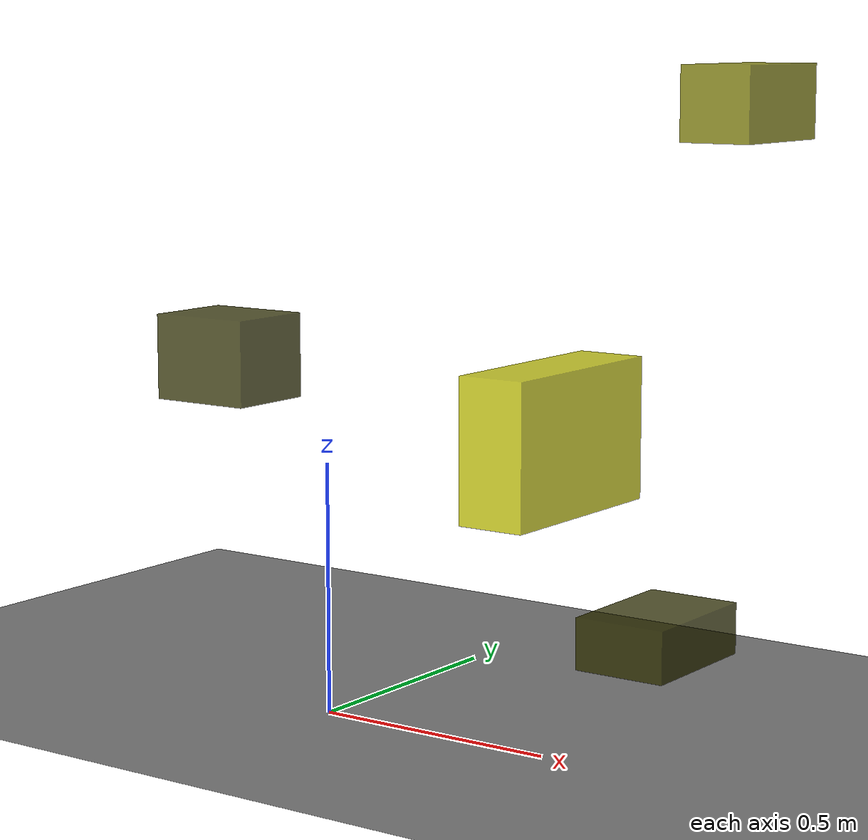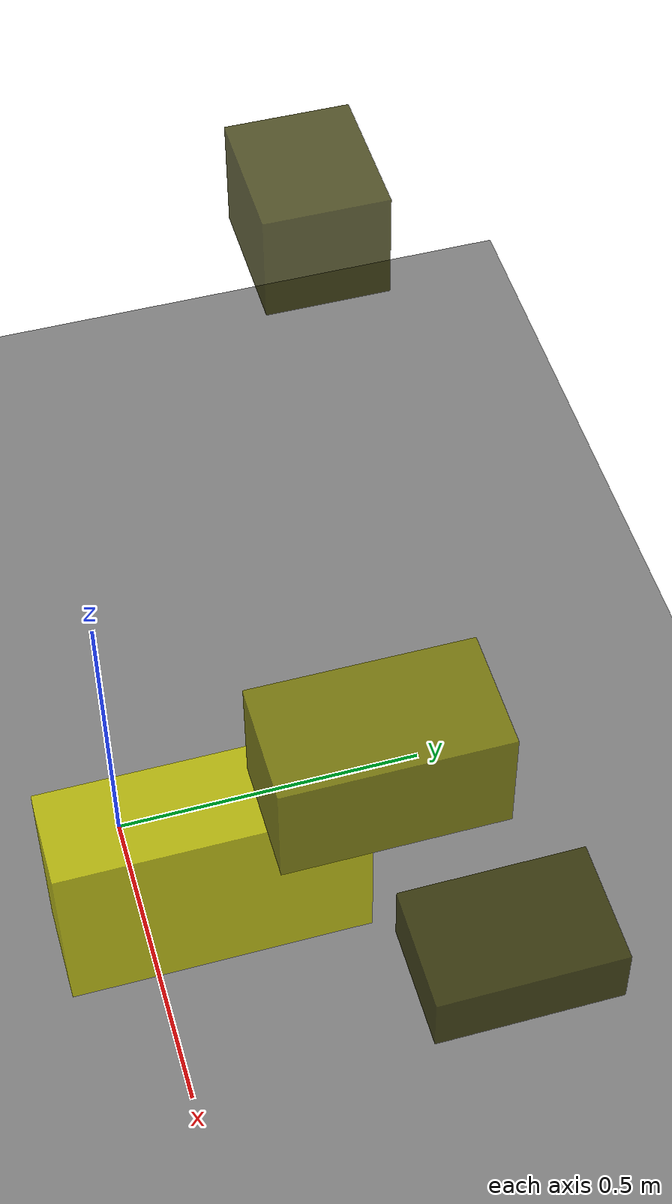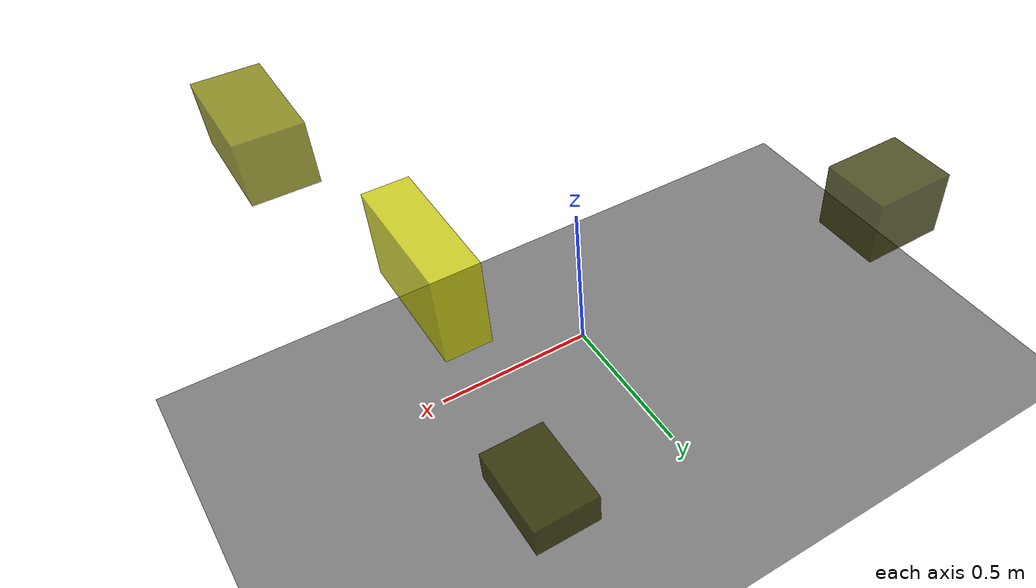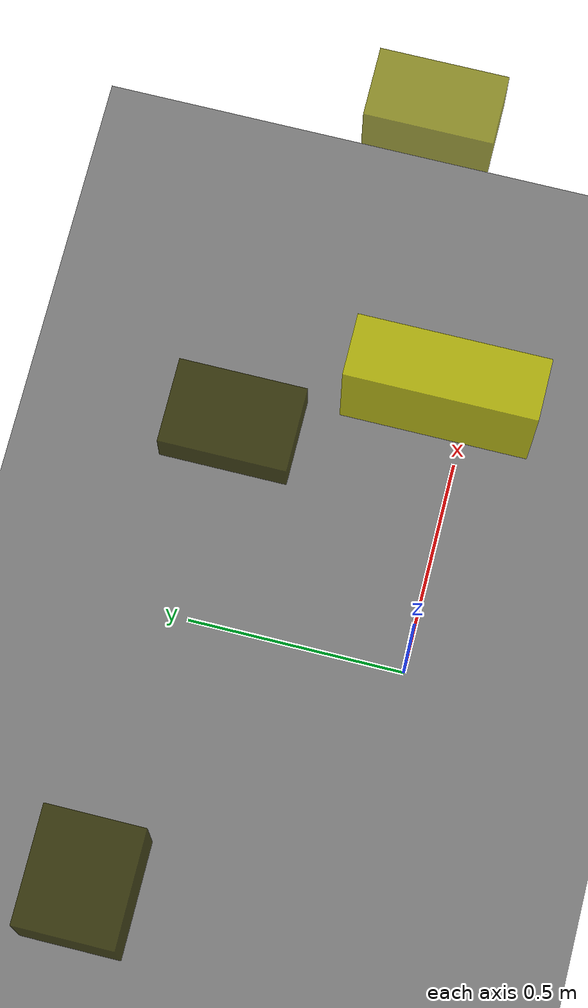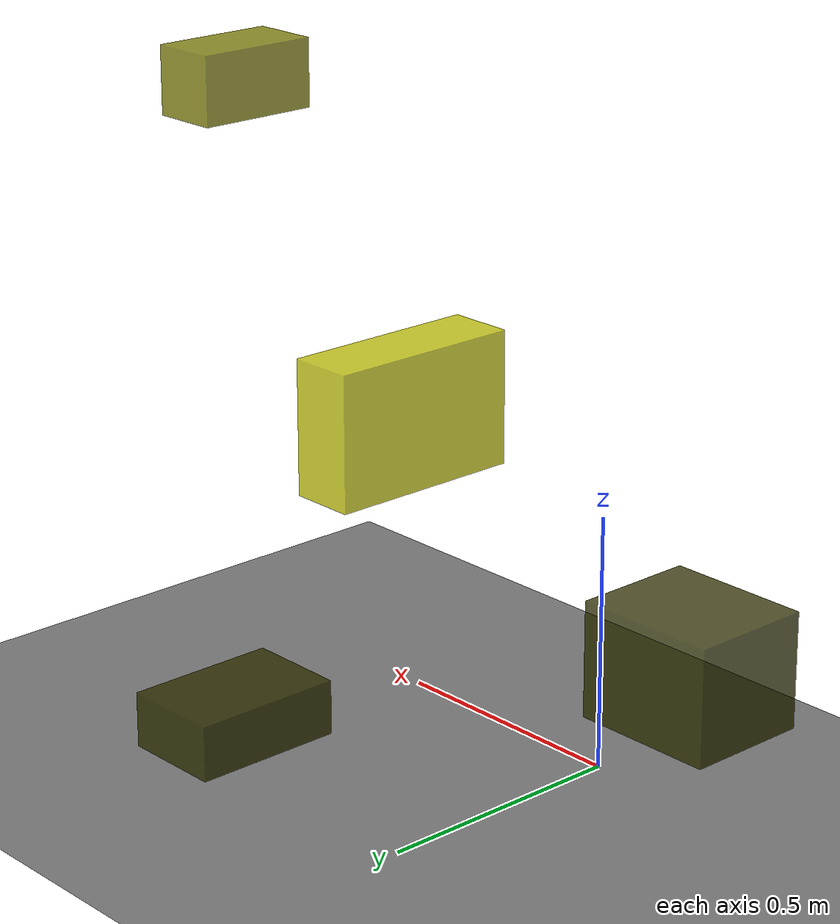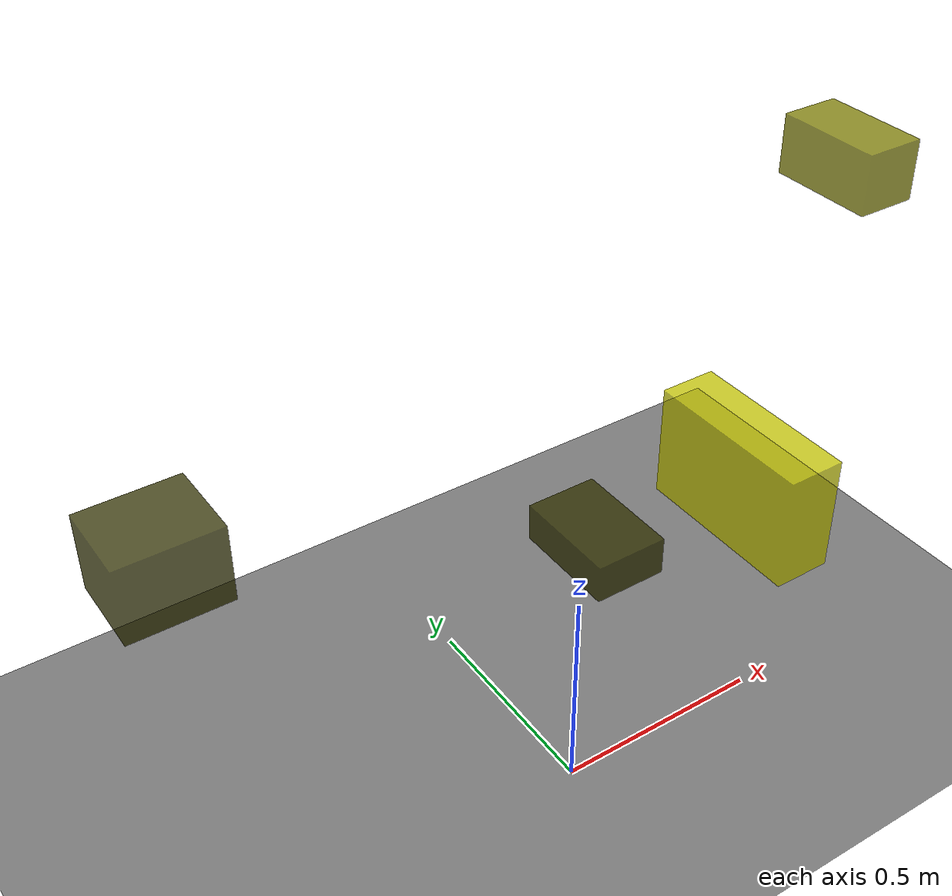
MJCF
<?xml version="1.0"?>
<mujoco model="obstacle_scene">
  <compiler angle="radian" coordinate="local"/>
  <option timestep="0.001" gravity="0 0 -9.81"/>

  <asset>
    <material name="obstacle_mat" rgba="0.8 0.8 0.0 0.8"/>
    <material name="ground_mat" rgba="0.5 0.5 0.5 1"/>
  </asset>

  <worldbody>
    <!-- Ground plane -->
    <geom name="ground" type="plane" size="3 3 0.1" material="ground_mat"/>

    <!-- Obstacles -->
    <body name="obstacle_0" pos="-0.686207 0.512066 0.596831">
      <geom name="obs_0" type="box" size="0.122207 0.104265 0.096542" rgba="0.2 0.2 0.0 0.8"/>
    </body>
    <body name="obstacle_1" pos="0.805744 0.185853 1.204774">
      <geom name="obs_1" type="box" size="0.068244 0.122692 0.067358" rgba="0.5 0.5 0.0 0.8"/>
    </body>
    <body name="obstacle_2" pos="0.483317 0.055305 0.588129">
      <geom name="obs_2" type="box" size="0.067045 0.203185 0.136211" rgba="0.8 0.8 0.0 0.8"/>
    </body>
    <body name="obstacle_3" pos="0.445666 0.507007 0.115040">
      <geom name="obs_3" type="box" size="0.099942 0.148968 0.053989" rgba="0.2 0.2 0.0 0.8"/>
    </body>
  </worldbody>
</mujoco>
